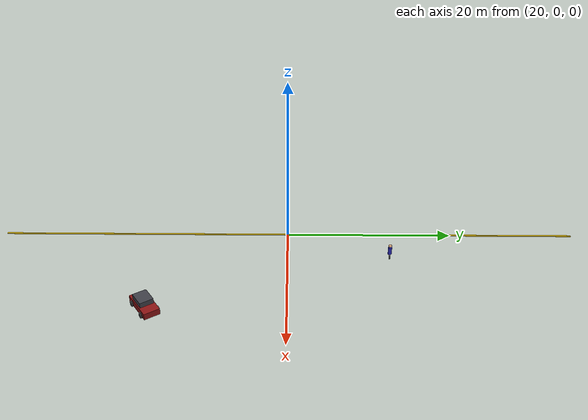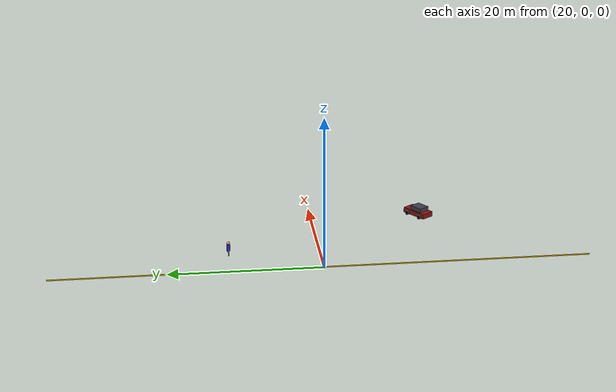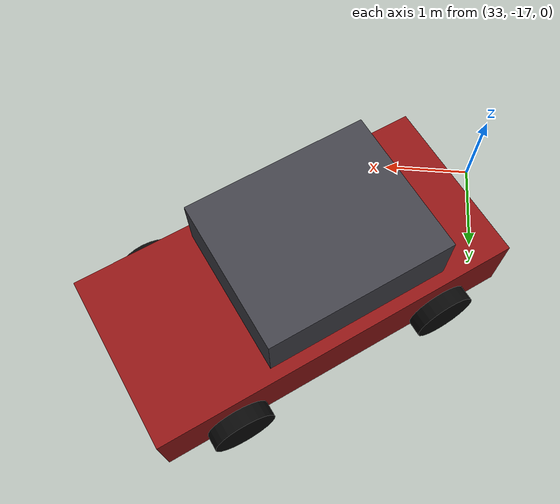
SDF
<sdf version="1.9">
 <world name="bordershield_world">
  <physics name="1ms" type="ignore">
   <max_step_size>0.001</max_step_size>
   <real_time_factor>1.0</real_time_factor>
  </physics>
  <plugin filename="gz-sim-physics-system" name="gz::sim::systems::Physics"/>
  <plugin filename="gz-sim-sensors-system" name="gz::sim::systems::Sensors">
   <render_engine>ogre2</render_engine>
  </plugin>
  <plugin filename="gz-sim-user-commands-system" name="gz::sim::systems::UserCommands"/>
  <plugin filename="gz-sim-scene-broadcaster-system" name="gz::sim::systems::SceneBroadcaster"/>
  <plugin filename="gz-sim-imu-system" name="gz::sim::systems::Imu"/>
  <plugin filename="gz-sim-navsat-system" name="gz::sim::systems::NavSat"/>
  <scene><ambient>1.0 1.0 1.0</ambient><background>0.72 0.78 0.85</background></scene>
  <spherical_coordinates>
   <latitude_deg>-35.363262</latitude_deg>
   <longitude_deg>149.165237</longitude_deg>
   <elevation>584</elevation>
   <heading_deg>0</heading_deg>
   <surface_model>EARTH_WGS84</surface_model>
  </spherical_coordinates>
  <light type="directional" name="sun">
   <pose>0 0 10 0 0 0</pose>
   <diffuse>0.8 0.8 0.8 1</diffuse>
   <specular>0.8 0.8 0.8 1</specular>
   <attenuation>
    <range>1000</range>
    <constant>0.9</constant>
    <linear>0.01</linear>
    <quadratic>0.001</quadratic>
   </attenuation>
   <direction>-0.5 0.1 -0.9</direction>
  </light>
  <model name="axes">
   <static>true</static>
   <link name="link">
    <sensor name="navsat_sensor" type="navsat"><always_on>true</always_on><update_rate>1</update_rate></sensor>
   </link>
  </model>
  <model name="person_target">
   <static>true</static>
   <pose>25 12 0 0 0 0</pose>
   <link name="body">
    <visual name="torso">
     <pose>0 0 1.15 0 0 0</pose>
     <geometry><cylinder><radius>0.22</radius><length>0.9</length></cylinder></geometry>
     <material><ambient>0.15 0.15 0.7 1</ambient><diffuse>0.15 0.15 0.7 1</diffuse></material>
    </visual>
    <visual name="head">
     <pose>0 0 1.8 0 0 0</pose>
     <geometry><sphere><radius>0.20</radius></sphere></geometry>
     <material><ambient>0.8 0.6 0.45 1</ambient><diffuse>0.8 0.6 0.45 1</diffuse></material>
    </visual>
    <visual name="left_leg">
     <pose>-0.12 0 0.45 0 0 0</pose>
     <geometry><cylinder><radius>0.08</radius><length>0.8</length></cylinder></geometry>
     <material><ambient>0.1 0.1 0.1 1</ambient><diffuse>0.1 0.1 0.1 1</diffuse></material>
    </visual>
    <visual name="right_leg">
     <pose>0.12 0 0.45 0 0 0</pose>
     <geometry><cylinder><radius>0.08</radius><length>0.8</length></cylinder></geometry>
     <material><ambient>0.1 0.1 0.1 1</ambient><diffuse>0.1 0.1 0.1 1</diffuse></material>
    </visual>
   </link>
  </model>
  <model name="vehicle_target">
   <static>true</static>
   <pose>35 -15 0.5 0 0 0.6</pose>
   <link name="vehicle_body">
    <visual name="chassis">
     <pose>0 0 0.45 0 0 0</pose>
     <geometry><box><size>3.8 1.8 0.7</size></box></geometry>
     <material><ambient>0.55 0.08 0.08 1</ambient><diffuse>0.55 0.08 0.08 1</diffuse></material>
    </visual>
    <visual name="cabin">
     <pose>-0.25 0 1.05 0 0 0</pose>
     <geometry><box><size>1.9 1.55 0.65</size></box></geometry>
     <material><ambient>0.25 0.25 0.28 1</ambient><diffuse>0.25 0.25 0.28 1</diffuse></material>
    </visual>
    <visual name="wheel_fl">
     <pose>1.15 0.95 0.25 1.5708 0 0</pose>
     <geometry><cylinder><radius>0.32</radius><length>0.22</length></cylinder></geometry>
     <material><ambient>0.03 0.03 0.03 1</ambient><diffuse>0.03 0.03 0.03 1</diffuse></material>
    </visual>
    <visual name="wheel_fr">
     <pose>1.15 -0.95 0.25 1.5708 0 0</pose>
     <geometry><cylinder><radius>0.32</radius><length>0.22</length></cylinder></geometry>
     <material><ambient>0.03 0.03 0.03 1</ambient><diffuse>0.03 0.03 0.03 1</diffuse></material>
    </visual>
    <visual name="wheel_rl">
     <pose>-1.15 0.95 0.25 1.5708 0 0</pose>
     <geometry><cylinder><radius>0.32</radius><length>0.22</length></cylinder></geometry>
     <material><ambient>0.03 0.03 0.03 1</ambient><diffuse>0.03 0.03 0.03 1</diffuse></material>
    </visual>
    <visual name="wheel_rr">
     <pose>-1.15 -0.95 0.25 1.5708 0 0</pose>
     <geometry><cylinder><radius>0.32</radius><length>0.22</length></cylinder></geometry>
     <material><ambient>0.03 0.03 0.03 1</ambient><diffuse>0.03 0.03 0.03 1</diffuse></material>
    </visual>
   </link>
  </model>
  <model name="border_marker">
   <static>true</static>
   <pose>20 0 0.05 0 0 0</pose>
   <link name="link">
    <visual name="line">
     <geometry><box><size>0.20 70 0.10</size></box></geometry>
     <material><ambient>0.9 0.75 0.05 1</ambient><diffuse>0.9 0.75 0.05 1</diffuse></material>
    </visual>
   </link>
  </model>
 </world>
</sdf>
